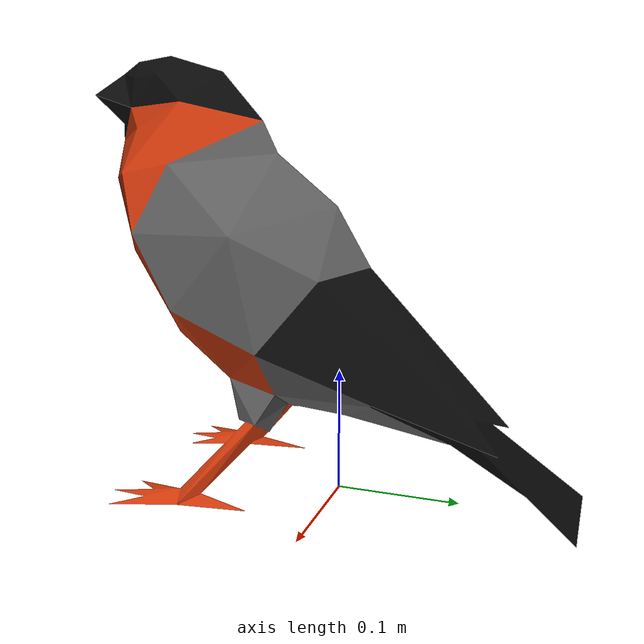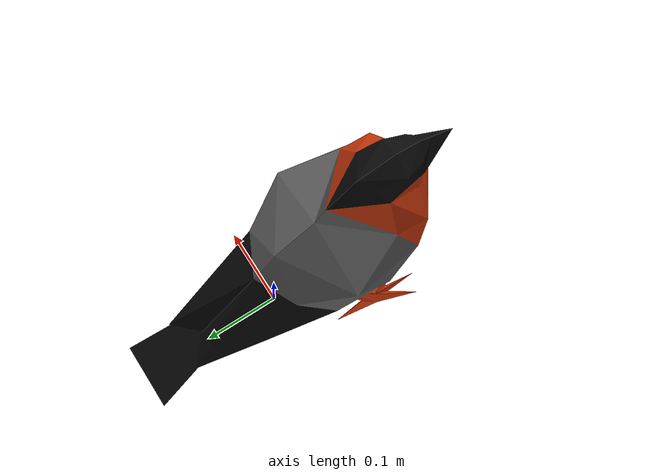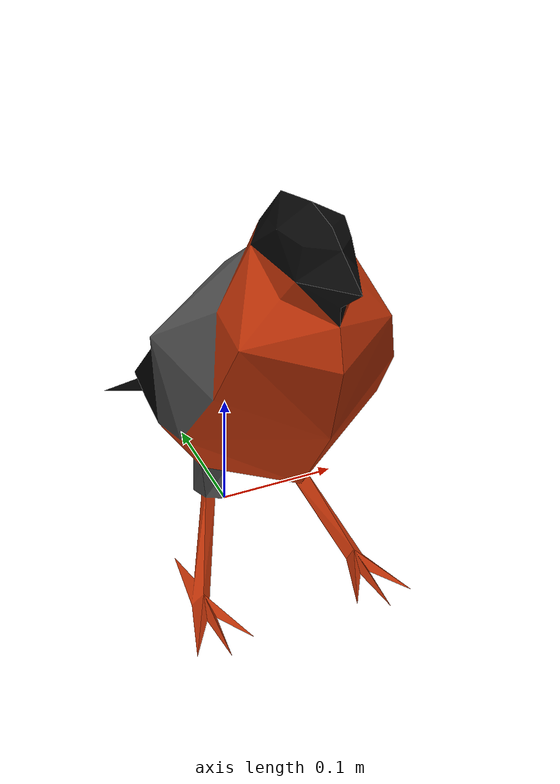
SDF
<?xml version="1.0"?>
<sdf version="1.5">
  <model name="bird">
    <static>true</static>
    <link name="link">
      <pose>0 0 0 0 0 0</pose>

      <visual name="visual">
        <cast_shadows>false</cast_shadows>
        <geometry>
          <mesh>
            <uri>model://bird/meshes/bird.dae</uri>
            <scale> 2.5 2.5 2.5 </scale>
          </mesh>
        </geometry>
      </visual>

      <collision name="collision">
        <geometry>
          <mesh>
            <uri>model://bird/meshes/bird.dae</uri>
          </mesh>
        </geometry>
      </collision>

    </link>
  </model>
</sdf>
